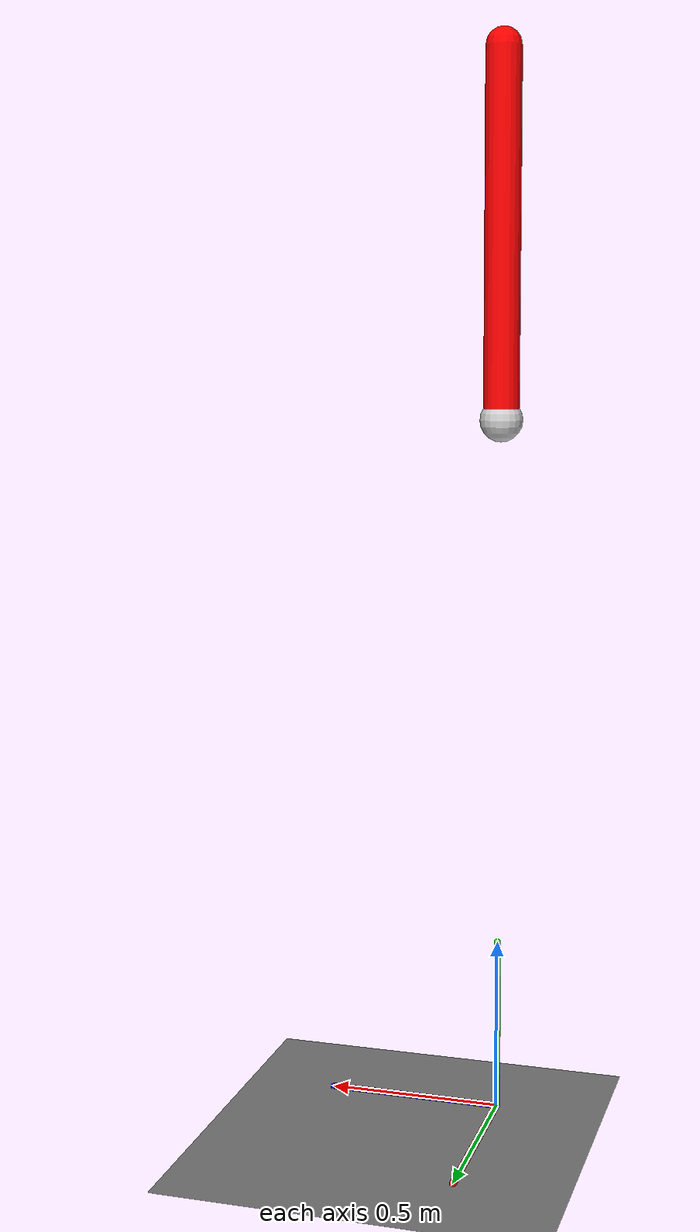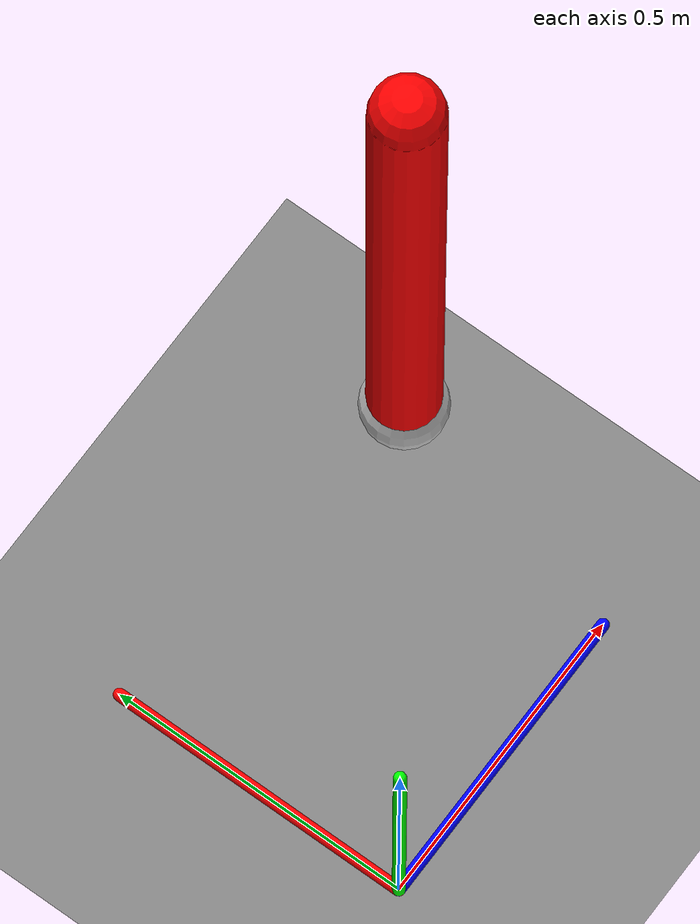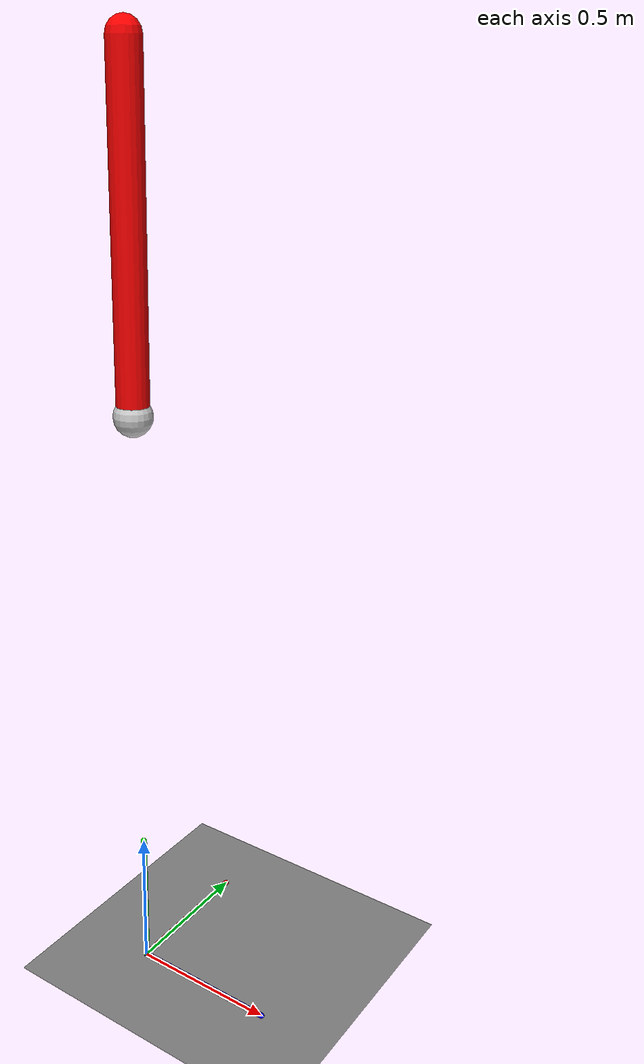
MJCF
<mujoco model="classic_IP">
  <!-- Use degrees for Euler angles -->
  <compiler angle="radian"/>

  <!-- Gravity in -z; 20 ms timestep -->
  <option gravity="0 0 -9.81" timestep="0.05" />

  <!-- Disable damping on all joints (free swing) -->
  <default>
    <joint damping="0" />
  </default>

  <!-- Define textures/materials -->
  <asset>
    <!-- Checkerboard texture: black (rgb1="0 0 0") and white (rgb2="1 1 1") -->
    <texture name="checkered_tex" type="2d" builtin="checker"
             width="300" height="300" mark="edge"
             rgb1="0 0 0" rgb2="1 1 1" markrgb="0.8 0.8 0.8"/>
    <material name="ground_mat" texture="checkered_tex" texrepeat="10 10" texuniform="true"/>

    <!-- Sphere (light gray) and rod (red) materials -->
    <material name="sphere_mat" rgba="0.8 0.8 0.8 1"/>
    <material name="rod_mat"    rgba="1 0 0 1"/>
    <!-- Arrows colors for world coordinates -->
    <material name="x_axis_mat"  rgba="0 0 1 1"/>
    <material name="y_axis_mat"  rgba="1 0 0 1"/>
    <material name="z_axis_mat"  rgba="0 1 0 1"/>

  </asset>

  <worldbody>
    <!-- Camera placed at (3,3,3) with euler angles for a nice angled view.
         Adjust as needed. -->
    <camera name="main_cam" pos="-10 0 50" euler="0 -45 0" />

    <!-- Floor in the x-y plane (normal is +z by MuJoCo default). -->
    <geom name="floor" type="plane" material="ground_mat"
          pos="0 0 0" size="5 5 0.1"
          contype="0" conaffinity="0"/>

    <!-- A small arrow showing -z direction (e.g., gravity) -->
    <body name="x-axis" pos="0 0 0">
      <!-- A capsule from (0,0,0) to (0,0,-1) representing the x vector. -->
      <geom name="x_arrow" type="capsule" fromto="0 0 0 0.5 0 0"
            size="0.01" material="x_axis_mat" density="0" />
    </body>
    <body name="y-axis" pos="0 0 0">
      <!-- A capsule from (0,0,0) to (0,0,-1) representing the y vector. -->
      <geom name="y_arrow" type="capsule" fromto="0 0 0 0 0.5 0"
            size="0.01" material="y_axis_mat" density="0" />
    </body>
    <body name="z-axis" pos="0 0 0">
      <!-- A capsule from (0,0,0) to (0,0,-1) representing the gravity vector. -->
      <geom name="z_arrow" type="capsule" fromto="0 0 0 0 0 0.5"
            size="0.01" material="z_axis_mat" density="0" />
    </body>

    <!-- Sphere body at z=2, with a hinge around the x-axis for rod swing in y-z plane -->
    <body name="sphere_body" pos="0 0 2">
      <joint name="sphere_joint" type="hinge" axis="0 1 0" />
      <!-- Massless sphere (density="0") -->
      <geom name="sphere_geom" type="sphere" size="0.06"
            material="sphere_mat" density="0" />

      <!-- Rod attached at the sphere center, mass=1, length=1 along y-axis -->
      <body name="rod_body" pos="0 0 0">
        <!-- Simple inertia so MuJoCo knows mass=1. -->
        <inertial pos="0 0 0.5" mass="1" diaginertia="0.001 0.001 0.001" />
        <geom name="rod_geom" type="capsule" fromto="0 0 0 0 0 1"
              size="0.05" material="rod_mat" density="0" />
      </body>
    </body>

  </worldbody>

  <actuator>
    <!-- A motor applying torque about the hinge axis:
         ctrlrange sets torque limits; gear=1 => direct 1:1 torque. -->
    <motor name="hinge_motor" joint="sphere_joint" ctrlrange="-2 2" gear="1" />
  </actuator>
</mujoco>
